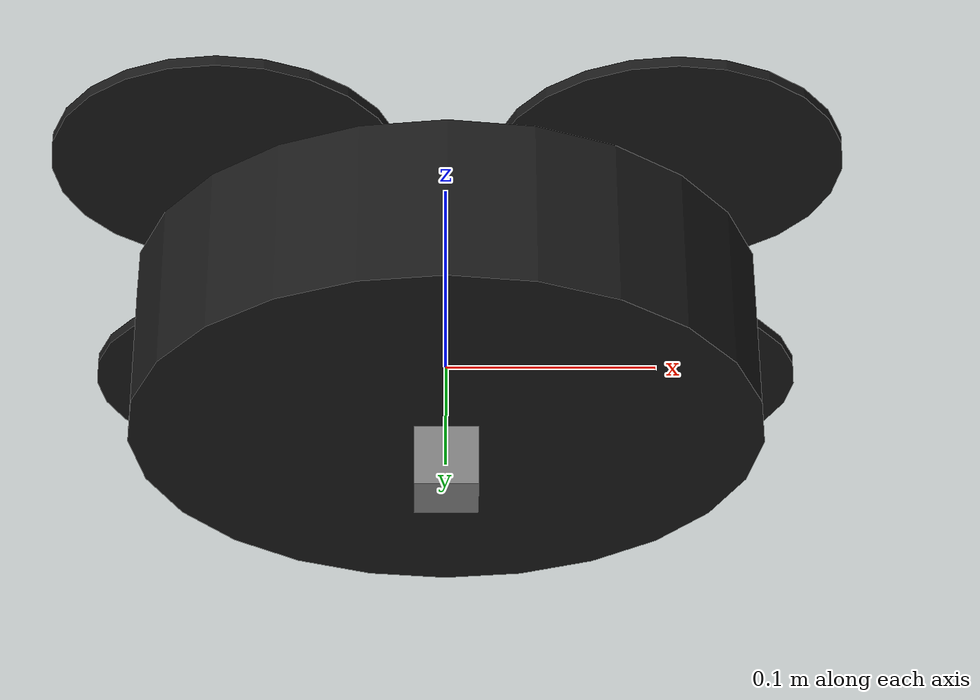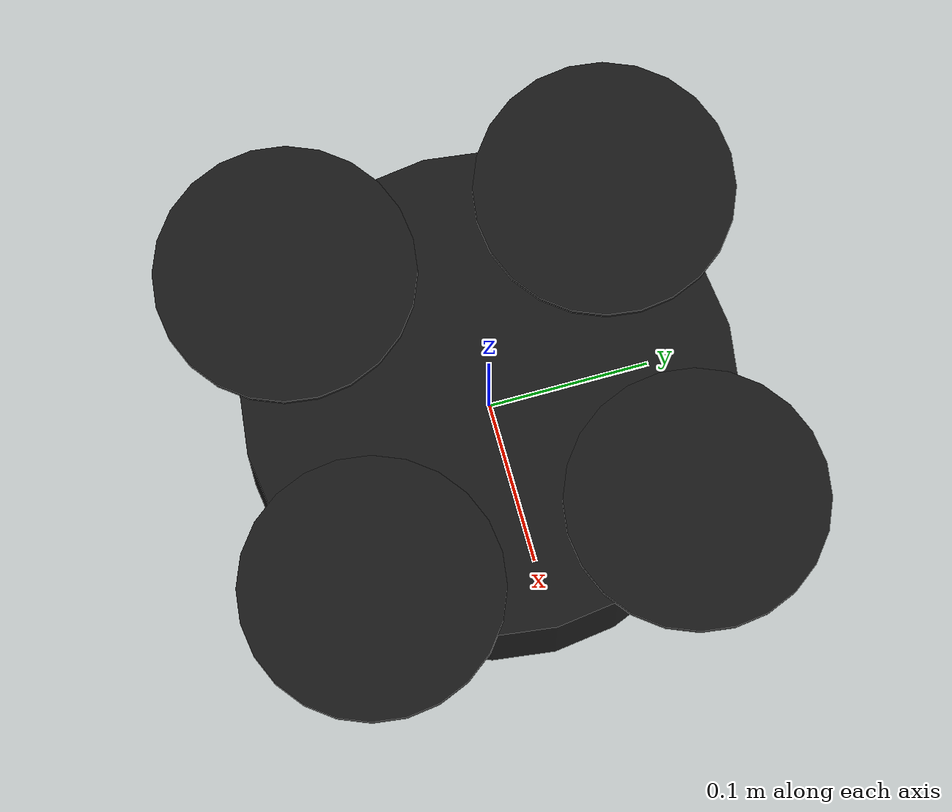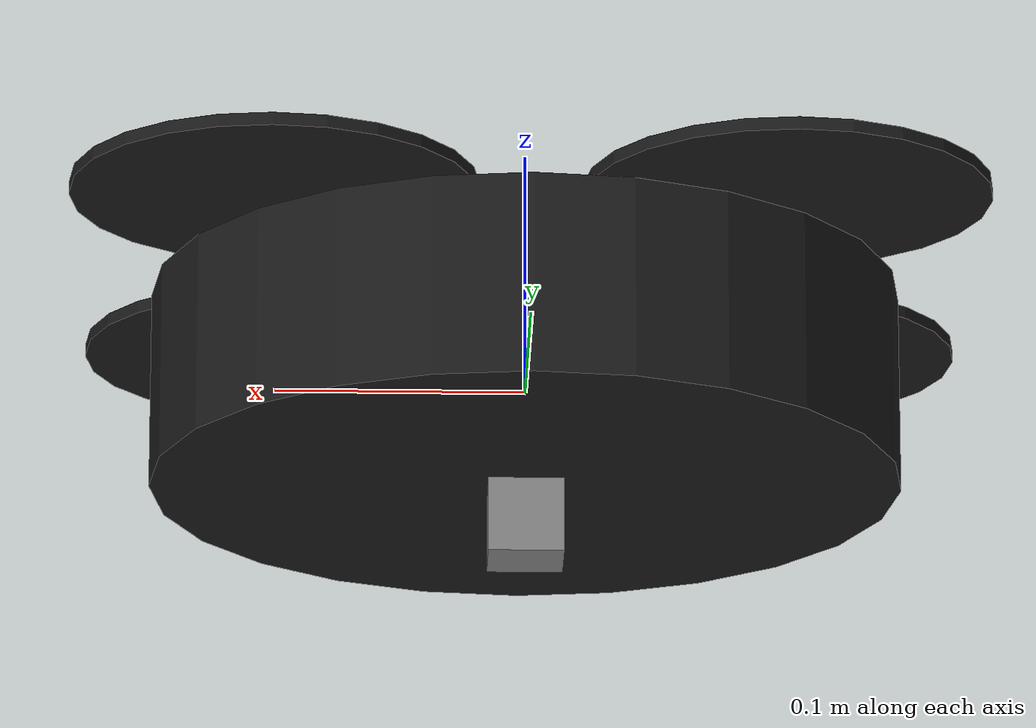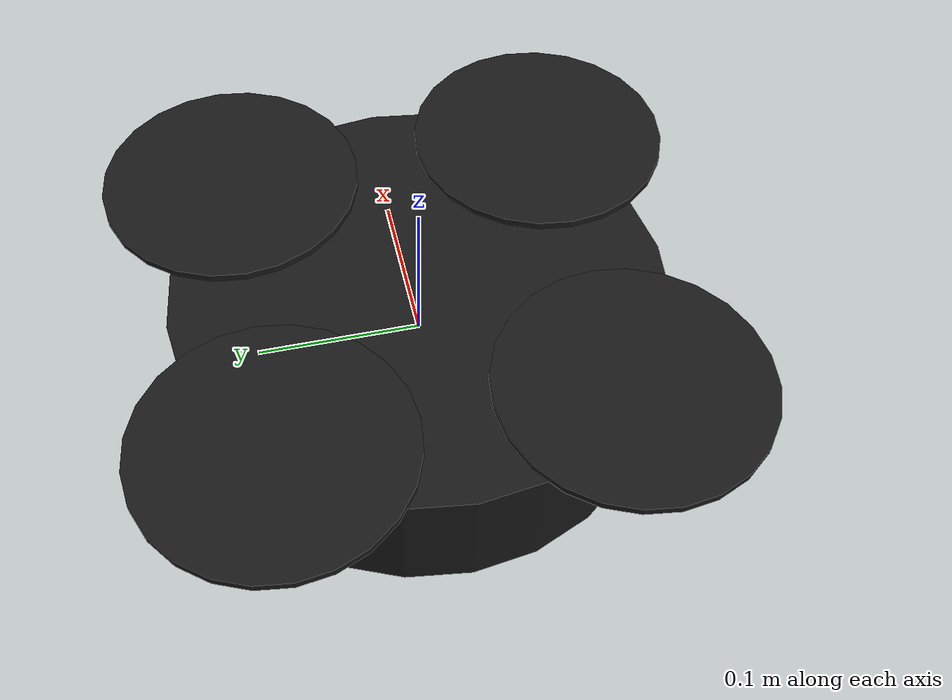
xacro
<?xml version="1.0"?>
<robot xmlns:xacro="http://www.ros.org/wiki/xacro" name="drone_camera">

    <!-- Properties -->
    <xacro:property name="drone_body_radius" value="0.15"/>
    <xacro:property name="drone_body_height" value="0.08"/>
    <xacro:property name="drone_mass" value="1.5"/>

    <xacro:property name="camera_size" value="0.03"/>
    <xacro:property name="camera_mass" value="0.05"/>

    <!-- Materials -->
    <material name="drone_black">
        <color rgba="0.1 0.1 0.1 1"/>
    </material>

    <material name="camera_gray">
        <color rgba="0.5 0.5 0.5 1"/>
    </material>

    <!-- Base link (center of drone) -->
    <link name="drone_base_link">
        <inertial>
            <origin xyz="0 0 0" rpy="0 0 0"/>
            <mass value="${drone_mass}"/>
            <inertia ixx="0.0082" ixy="0" ixz="0" iyy="0.0082" iyz="0" izz="0.0145"/>
        </inertial>
        <visual>
            <origin xyz="0 0 0" rpy="0 0 0"/>
            <geometry>
                <cylinder radius="${drone_body_radius}" length="${drone_body_height}"/>
            </geometry>
            <material name="drone_black"/>
        </visual>
        <collision>
            <origin xyz="0 0 0" rpy="0 0 0"/>
            <geometry>
                <cylinder radius="${drone_body_radius}" length="${drone_body_height}"/>
            </geometry>
        </collision>
    </link>

    <!-- Gazebo properties for base link -->
    <gazebo reference="drone_base_link">
        <material>Gazebo/DarkGrey</material>
        <gravity>false</gravity>
    </gazebo>

    <!-- Camera link -->
    <joint name="camera_joint" type="fixed">
        <parent link="drone_base_link"/>
        <child link="camera_link"/>
        <origin xyz="0 0 ${-drone_body_height/2 - camera_size/2}" rpy="0 ${pi/2} 0"/>
    </joint>

    <link name="camera_link">
        <inertial>
            <origin xyz="0 0 0" rpy="0 0 0"/>
            <mass value="${camera_mass}"/>
            <inertia ixx="0.00001" ixy="0" ixz="0" iyy="0.00001" iyz="0" izz="0.00001"/>
        </inertial>
        <visual>
            <origin xyz="0 0 0" rpy="0 0 0"/>
            <geometry>
                <box size="${camera_size} ${camera_size} ${camera_size}"/>
            </geometry>
            <material name="camera_gray"/>
        </visual>
        <collision>
            <origin xyz="0 0 0" rpy="0 0 0"/>
            <geometry>
                <box size="${camera_size} ${camera_size} ${camera_size}"/>
            </geometry>
        </collision>
    </link>

    <!-- Gazebo properties for camera -->
    <gazebo reference="camera_link">
        <material>Gazebo/Grey</material>
        <sensor type="camera" name="drone_camera">
            <update_rate>30.0</update_rate>
            <visualize>true</visualize>
            <camera name="drone_camera">
                <horizontal_fov>1.396</horizontal_fov> <!-- 80 degrees -->
                <image>
                    <width>640</width>
                    <height>480</height>
                    <format>R8G8B8</format>
                </image>
                <clip>
                    <near>0.1</near>
                    <far>100</far>
                </clip>
                <noise>
                    <type>gaussian</type>
                    <mean>0.0</mean>
                    <stddev>0.007</stddev>
                </noise>
                <!-- Camera intrinsics (simulated, similar to real drone cameras) -->
                <!-- fx = fy = width / (2 * tan(fov/2)) = 640 / (2 * tan(40°)) ≈ 381 -->
                <distortion>
                    <k1>-0.05</k1>
                    <k2>0.02</k2>
                    <k3>0.0</k3>
                    <p1>0.001</p1>
                    <p2>-0.001</p2>
                    <center>0.5 0.5</center>
                </distortion>
            </camera>
            <plugin name="camera_controller" filename="libgazebo_ros_camera.so">
                <ros>
                    <namespace>/drone</namespace>
                    <remapping>~/image_raw:=camera/image_raw</remapping>
                    <remapping>~/camera_info:=camera/camera_info</remapping>
                </ros>
                <camera_name>camera</camera_name>
                <frame_name>camera_link_optical</frame_name>
                <hack_baseline>0.0</hack_baseline>
            </plugin>
        </sensor>
    </gazebo>

    <!-- Optical frame (standard ROS camera convention: Z forward, X right, Y down) -->
    <joint name="camera_optical_joint" type="fixed">
        <parent link="camera_link"/>
        <child link="camera_link_optical"/>
        <origin xyz="0 0 0" rpy="${-pi/2} 0 ${-pi/2}"/>
    </joint>

    <link name="camera_link_optical"/>

    <!-- Propeller markers (visual only, for realism) -->
    <xacro:macro name="propeller" params="name x y">
        <joint name="${name}_joint" type="fixed">
            <parent link="drone_base_link"/>
            <child link="${name}_link"/>
            <origin xyz="${x} ${y} ${drone_body_height/2 + 0.01}" rpy="0 0 0"/>
        </joint>

        <link name="${name}_link">
            <visual>
                <geometry>
                    <cylinder radius="0.08" length="0.005"/>
                </geometry>
                <material name="drone_black"/>
            </visual>
        </link>

        <gazebo reference="${name}_link">
            <material>Gazebo/Black</material>
        </gazebo>
    </xacro:macro>

    <xacro:propeller name="propeller_fl" x="0.10" y="0.10"/>
    <xacro:propeller name="propeller_fr" x="0.10" y="-0.10"/>
    <xacro:propeller name="propeller_bl" x="-0.10" y="0.10"/>
    <xacro:propeller name="propeller_br" x="-0.10" y="-0.10"/>

</robot>
